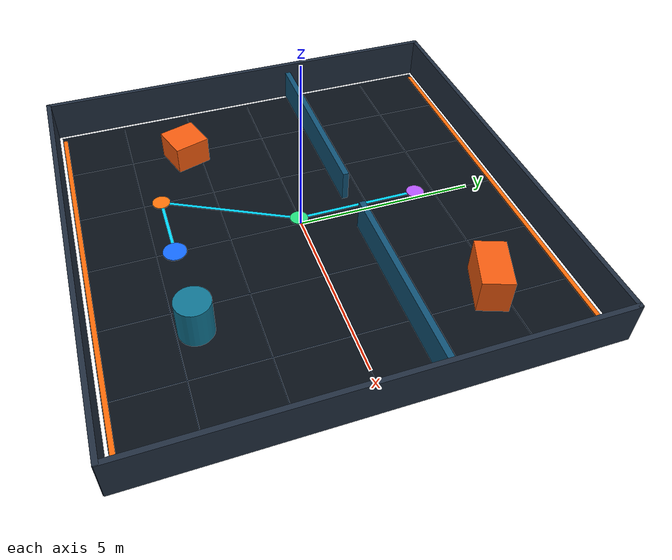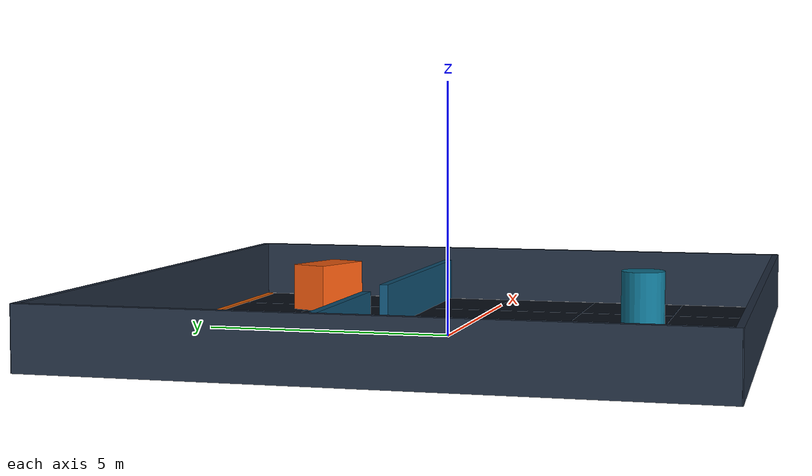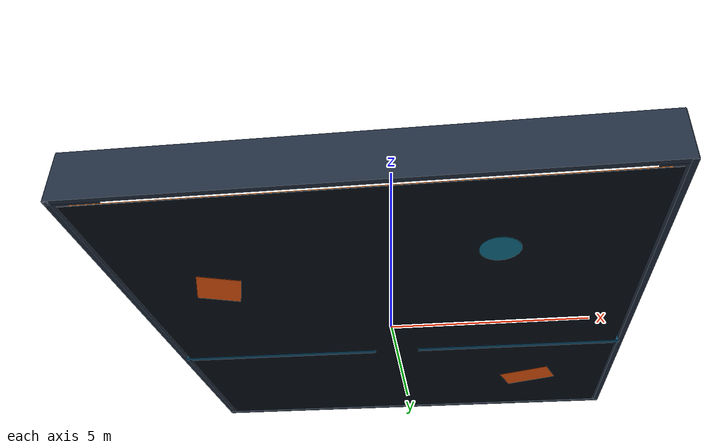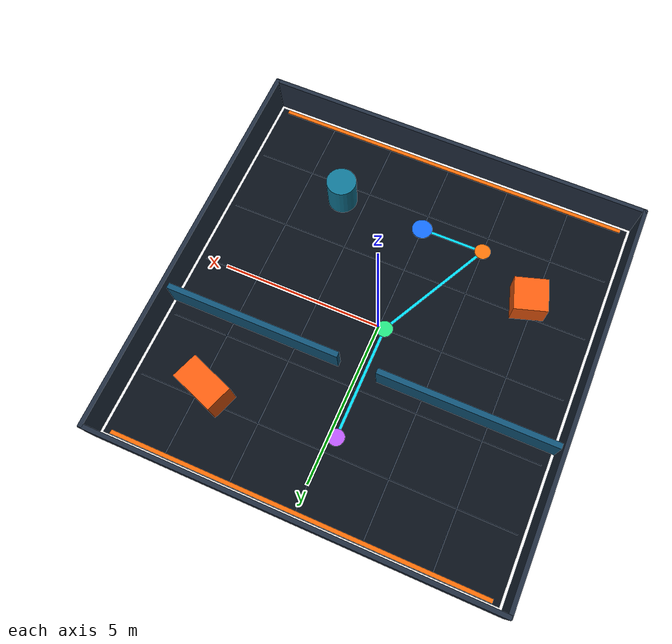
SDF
<?xml version="1.0"?>
<!-- Copyright 2026 Hasan Ahmed; SPDX-License-Identifier: Apache-2.0 -->
<!-- Presentation-only cladding and route markings. This model deliberately
     contains no collisions, sensors, plugins, or dynamics. -->
<sdf version="1.10">
  <model name="portfolio_test_bay">
    <static>true</static>
    <link name="visuals">
      <visual name="graphite_floor">
        <pose>0 0 0.006 0 0 0</pose>
        <geometry><box><size>11.8 11.8 0.012</size></box></geometry>
        <material>
          <ambient>0.025 0.045 0.075 1</ambient>
          <diffuse>0.035 0.060 0.095 1</diffuse>
          <specular>0.12 0.16 0.22 1</specular>
        </material>
      </visual>

      <visual name="wall_north_cladding">
        <pose>0 6.045 0.60 0 0 0</pose>
        <geometry><box><size>12.18 0.13 1.19</size></box></geometry>
        <material><ambient>0.10 0.14 0.20 1</ambient><diffuse>0.13 0.18 0.25 1</diffuse></material>
      </visual>
      <visual name="wall_south_cladding">
        <pose>0 -6.045 0.60 0 0 0</pose>
        <geometry><box><size>12.18 0.13 1.19</size></box></geometry>
        <material><ambient>0.10 0.14 0.20 1</ambient><diffuse>0.13 0.18 0.25 1</diffuse></material>
      </visual>
      <visual name="wall_east_cladding">
        <pose>6.045 0 0.60 0 0 0</pose>
        <geometry><box><size>0.13 12.18 1.19</size></box></geometry>
        <material><ambient>0.10 0.14 0.20 1</ambient><diffuse>0.13 0.18 0.25 1</diffuse></material>
      </visual>
      <visual name="wall_west_cladding">
        <pose>-6.045 0 0.60 0 0 0</pose>
        <geometry><box><size>0.13 12.18 1.19</size></box></geometry>
        <material><ambient>0.10 0.14 0.20 1</ambient><diffuse>0.13 0.18 0.25 1</diffuse></material>
      </visual>

      <visual name="divider_west_cladding">
        <pose>-3.30 1.50 0.45 0 0 0</pose>
        <geometry><box><size>5.42 0.17 0.91</size></box></geometry>
        <material><ambient>0.04 0.22 0.32 1</ambient><diffuse>0.06 0.32 0.46 1</diffuse></material>
      </visual>
      <visual name="divider_east_cladding">
        <pose>3.30 1.50 0.45 0 0 0</pose>
        <geometry><box><size>5.42 0.17 0.91</size></box></geometry>
        <material><ambient>0.04 0.22 0.32 1</ambient><diffuse>0.06 0.32 0.46 1</diffuse></material>
      </visual>
      <visual name="west_obstacle_cladding">
        <pose>-3.8 -2.4 0.40 0 0 0.30</pose>
        <geometry><box><size>1.015 1.015 0.81</size></box></geometry>
        <material><ambient>0.78 0.24 0.04 1</ambient><diffuse>0.96 0.36 0.06 1</diffuse></material>
      </visual>
      <visual name="east_obstacle_cladding">
        <pose>3.7 3.7 0.50 0 0 -0.35</pose>
        <geometry><box><size>1.415 0.815 1.01</size></box></geometry>
        <material><ambient>0.78 0.24 0.04 1</ambient><diffuse>0.96 0.36 0.06 1</diffuse></material>
      </visual>
      <visual name="cylinder_obstacle_cladding">
        <pose>2.7 -3.5 0.55 0 0 0</pose>
        <geometry><cylinder><radius>0.457</radius><length>1.11</length></cylinder></geometry>
        <material><ambient>0.04 0.32 0.42 1</ambient><diffuse>0.06 0.46 0.58 1</diffuse></material>
      </visual>

      <visual name="grid_horizontal_minus_4">
        <pose>0 -4 0.014 0 0 0</pose><geometry><box><size>11.5 0.018 0.006</size></box></geometry>
        <material><ambient>0.10 0.16 0.24 1</ambient><diffuse>0.12 0.20 0.30 1</diffuse></material>
      </visual>
      <visual name="grid_horizontal_minus_2">
        <pose>0 -2 0.014 0 0 0</pose><geometry><box><size>11.5 0.018 0.006</size></box></geometry>
        <material><ambient>0.10 0.16 0.24 1</ambient><diffuse>0.12 0.20 0.30 1</diffuse></material>
      </visual>
      <visual name="grid_horizontal_zero">
        <pose>0 0 0.014 0 0 0</pose><geometry><box><size>11.5 0.018 0.006</size></box></geometry>
        <material><ambient>0.10 0.16 0.24 1</ambient><diffuse>0.12 0.20 0.30 1</diffuse></material>
      </visual>
      <visual name="grid_horizontal_plus_2">
        <pose>0 2 0.014 0 0 0</pose><geometry><box><size>11.5 0.018 0.006</size></box></geometry>
        <material><ambient>0.10 0.16 0.24 1</ambient><diffuse>0.12 0.20 0.30 1</diffuse></material>
      </visual>
      <visual name="grid_horizontal_plus_4">
        <pose>0 4 0.014 0 0 0</pose><geometry><box><size>11.5 0.018 0.006</size></box></geometry>
        <material><ambient>0.10 0.16 0.24 1</ambient><diffuse>0.12 0.20 0.30 1</diffuse></material>
      </visual>
      <visual name="grid_vertical_minus_4">
        <pose>-4 0 0.014 0 0 0</pose><geometry><box><size>0.018 11.5 0.006</size></box></geometry>
        <material><ambient>0.10 0.16 0.24 1</ambient><diffuse>0.12 0.20 0.30 1</diffuse></material>
      </visual>
      <visual name="grid_vertical_minus_2">
        <pose>-2 0 0.014 0 0 0</pose><geometry><box><size>0.018 11.5 0.006</size></box></geometry>
        <material><ambient>0.10 0.16 0.24 1</ambient><diffuse>0.12 0.20 0.30 1</diffuse></material>
      </visual>
      <visual name="grid_vertical_zero">
        <pose>0 0 0.014 0 0 0</pose><geometry><box><size>0.018 11.5 0.006</size></box></geometry>
        <material><ambient>0.10 0.16 0.24 1</ambient><diffuse>0.12 0.20 0.30 1</diffuse></material>
      </visual>
      <visual name="grid_vertical_plus_2">
        <pose>2 0 0.014 0 0 0</pose><geometry><box><size>0.018 11.5 0.006</size></box></geometry>
        <material><ambient>0.10 0.16 0.24 1</ambient><diffuse>0.12 0.20 0.30 1</diffuse></material>
      </visual>
      <visual name="grid_vertical_plus_4">
        <pose>4 0 0.014 0 0 0</pose><geometry><box><size>0.018 11.5 0.006</size></box></geometry>
        <material><ambient>0.10 0.16 0.24 1</ambient><diffuse>0.12 0.20 0.30 1</diffuse></material>
      </visual>

      <visual name="route_segment_1">
        <pose>-1.0 -3.5 0.026 0 0 0</pose>
        <geometry><box><size>2.0 0.085 0.018</size></box></geometry>
        <material><ambient>0.00 0.64 0.82 1</ambient><diffuse>0.00 0.84 1.00 1</diffuse><emissive>0.00 0.16 0.20 1</emissive></material>
      </visual>
      <visual name="route_segment_2">
        <pose>-1.1 -1.75 0.026 0 0 1.095</pose>
        <geometry><box><size>3.936 0.085 0.018</size></box></geometry>
        <material><ambient>0.00 0.64 0.82 1</ambient><diffuse>0.00 0.84 1.00 1</diffuse><emissive>0.00 0.16 0.20 1</emissive></material>
      </visual>
      <visual name="route_segment_3">
        <pose>-0.2 1.75 0.026 0 0 1.57079632679</pose>
        <geometry><box><size>3.5 0.085 0.018</size></box></geometry>
        <material><ambient>0.00 0.64 0.82 1</ambient><diffuse>0.00 0.84 1.00 1</diffuse><emissive>0.00 0.16 0.20 1</emissive></material>
      </visual>

      <visual name="start_pad">
        <pose>0 -3.5 0.030 0 0 0</pose>
        <geometry><cylinder><radius>0.32</radius><length>0.022</length></cylinder></geometry>
        <material><ambient>0.05 0.28 0.82 1</ambient><diffuse>0.08 0.42 1.00 1</diffuse></material>
      </visual>
      <visual name="waypoint_1_pad">
        <pose>-2.0 -3.5 0.032 0 0 0</pose>
        <geometry><cylinder><radius>0.25</radius><length>0.026</length></cylinder></geometry>
        <material><ambient>0.94 0.30 0.03 1</ambient><diffuse>1.00 0.45 0.04 1</diffuse></material>
      </visual>
      <visual name="waypoint_2_pad">
        <pose>-0.2 0 0.032 0 0 0</pose>
        <geometry><cylinder><radius>0.25</radius><length>0.026</length></cylinder></geometry>
        <material><ambient>0.10 0.64 0.38 1</ambient><diffuse>0.14 0.88 0.50 1</diffuse></material>
      </visual>
      <visual name="waypoint_3_pad">
        <pose>-0.2 3.5 0.032 0 0 0</pose>
        <geometry><cylinder><radius>0.25</radius><length>0.026</length></cylinder></geometry>
        <material><ambient>0.56 0.22 0.90 1</ambient><diffuse>0.72 0.34 1.00 1</diffuse></material>
      </visual>

      <visual name="south_safety_bar">
        <pose>0 -5.82 0.025 0 0 0</pose>
        <geometry><box><size>11.4 0.12 0.035</size></box></geometry>
        <material><ambient>0.90 0.28 0.02 1</ambient><diffuse>1.00 0.42 0.03 1</diffuse></material>
      </visual>
      <visual name="north_safety_bar">
        <pose>0 5.82 0.025 0 0 0</pose>
        <geometry><box><size>11.4 0.12 0.035</size></box></geometry>
        <material><ambient>0.90 0.28 0.02 1</ambient><diffuse>1.00 0.42 0.03 1</diffuse></material>
      </visual>
    </link>
  </model>
</sdf>
